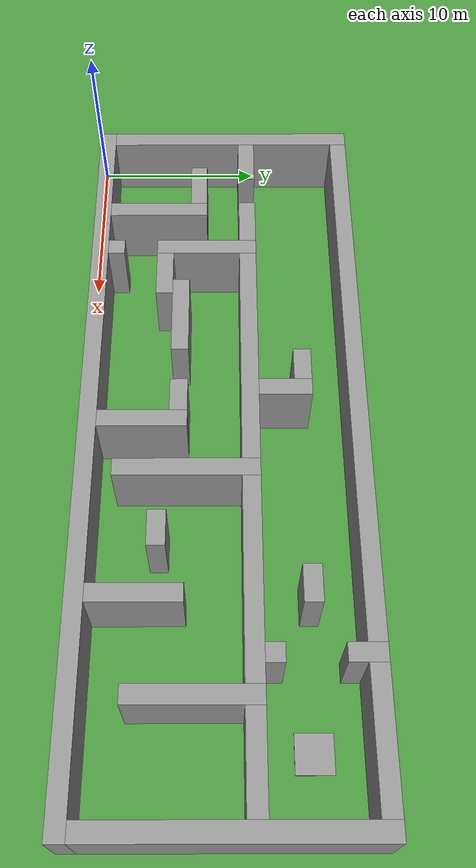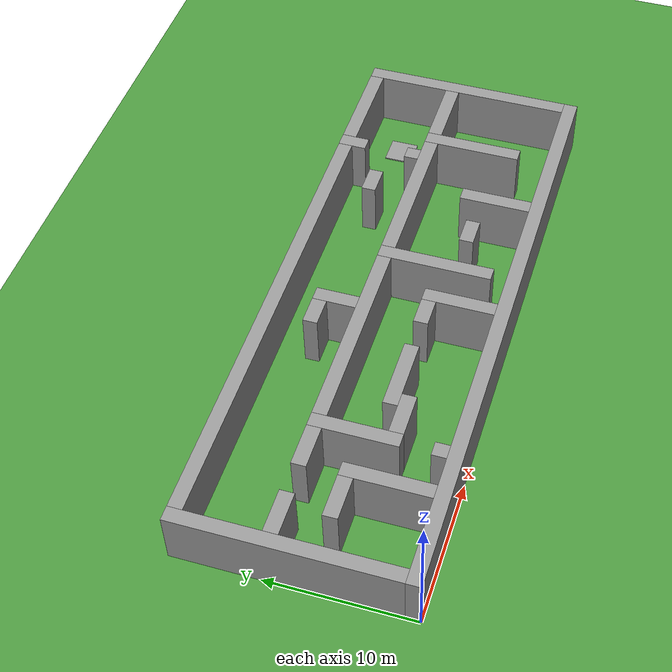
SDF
<sdf version="1.6">
 <world name="default">
  <light name="sun" type="directional">
   <pose>0 0 10 0 -0 0</pose>
   <diffuse>0.8 0.8 0.8 1</diffuse>
   <specular>0.1 0.1 0.1 1</specular>
   <attenuation>
    <range>1000</range>
    <constant>0.9</constant>
    <linear>0.01</linear>
    <quadratic>0.001</quadratic>
   </attenuation>
   <direction>-0.5 0.5 -1</direction>
  </light>
  <model name="ground_plane">
   <static>1</static>
   <link name="link">
    <collision name="collision">
     <geometry><plane><normal>0 0 1</normal><size>100 100</size></plane></geometry>
     <surface><friction><ode><mu>100</mu><mu2>50</mu2></ode></friction></surface>
    </collision>
    <visual name="visual">
     <cast_shadows>0</cast_shadows>
     <geometry><plane><normal>0 0 1</normal><size>100 100</size></plane></geometry>
     <material>
      <script><uri>file://media/materials/scripts/gazebo.material</uri><name>Gazebo/Grass</name></script>
     </material>
    </visual>
   </link>
  </model>
  <gravity>0 0 -9.8</gravity>
  <magnetic_field>6e-06 2.3e-05 -4.2e-05</magnetic_field>
  <atmosphere type="adiabatic"/>
  <physics name="default_physics" default="0" type="ode">
   <max_step_size>0.001</max_step_size>
   <real_time_factor>1</real_time_factor>
   <real_time_update_rate>1000</real_time_update_rate>
  </physics>
  <scene><ambient>0.4 0.4 0.4 1</ambient><background>0.7 0.7 0.7 1</background><shadows>1</shadows></scene>
  <spherical_coordinates>
   <surface_model>EARTH_WGS84</surface_model>
   <latitude_deg>0</latitude_deg>
   <longitude_deg>0</longitude_deg>
   <elevation>0</elevation>
   <heading_deg>0</heading_deg>
  </spherical_coordinates>
  <model name="wall">
   <pose>21.500000 0.500000 2 0 0 0</pose>
   <static>1</static>
   <link name="wall-link">
    <collision name="collision"><geometry><box><size>43 1 4</size></box></geometry></collision>
    <visual name="visual">
     <geometry><box><size>43 1 4</size></box></geometry>
     <material>
      <script><name>Gazebo/Grey</name><uri>file://media/materials/scripts/gazebo.material</uri></script>
     </material>
    </visual>
    <gravity>0</gravity>
   </link>
  </model>
  <model name="wall">
   <pose>0.500000 8.500000 2 0 0 0</pose>
   <static>1</static>
   <link name="wall-link">
    <collision name="collision"><geometry><box><size>1 15 4</size></box></geometry></collision>
    <visual name="visual">
     <geometry><box><size>1 15 4</size></box></geometry>
     <material>
      <script><name>Gazebo/Grey</name><uri>file://media/materials/scripts/gazebo.material</uri></script>
     </material>
    </visual>
    <gravity>0</gravity>
   </link>
  </model>
  <model name="wall">
   <pose>6.500000 4.000000 2 0 0 0</pose>
   <static>1</static>
   <link name="wall-link">
    <collision name="collision"><geometry><box><size>1 6 4</size></box></geometry></collision>
    <visual name="visual">
     <geometry><box><size>1 6 4</size></box></geometry>
     <material>
      <script><name>Gazebo/Grey</name><uri>file://media/materials/scripts/gazebo.material</uri></script>
     </material>
    </visual>
    <gravity>0</gravity>
   </link>
  </model>
  <model name="wall">
   <pose>9.500000 1.500000 2 0 0 0</pose>
   <static>1</static>
   <link name="wall-link">
    <collision name="collision"><geometry><box><size>1 1 4</size></box></geometry></collision>
    <visual name="visual">
     <geometry><box><size>1 1 4</size></box></geometry>
     <material>
      <script><name>Gazebo/Grey</name><uri>file://media/materials/scripts/gazebo.material</uri></script>
     </material>
    </visual>
    <gravity>0</gravity>
   </link>
  </model>
  <model name="wall">
   <pose>21.500000 3.500000 2 0 0 0</pose>
   <static>1</static>
   <link name="wall-link">
    <collision name="collision"><geometry><box><size>1 5 4</size></box></geometry></collision>
    <visual name="visual">
     <geometry><box><size>1 5 4</size></box></geometry>
     <material>
      <script><name>Gazebo/Grey</name><uri>file://media/materials/scripts/gazebo.material</uri></script>
     </material>
    </visual>
    <gravity>0</gravity>
   </link>
  </model>
  <model name="wall">
   <pose>31.500000 3.500000 2 0 0 0</pose>
   <static>1</static>
   <link name="wall-link">
    <collision name="collision"><geometry><box><size>1 5 4</size></box></geometry></collision>
    <visual name="visual">
     <geometry><box><size>1 5 4</size></box></geometry>
     <material>
      <script><name>Gazebo/Grey</name><uri>file://media/materials/scripts/gazebo.material</uri></script>
     </material>
    </visual>
    <gravity>0</gravity>
   </link>
  </model>
  <model name="wall">
   <pose>42.500000 8.500000 2 0 0 0</pose>
   <static>1</static>
   <link name="wall-link">
    <collision name="collision"><geometry><box><size>1 15 4</size></box></geometry></collision>
    <visual name="visual">
     <geometry><box><size>1 15 4</size></box></geometry>
     <material>
      <script><name>Gazebo/Grey</name><uri>file://media/materials/scripts/gazebo.material</uri></script>
     </material>
    </visual>
    <gravity>0</gravity>
   </link>
  </model>
  <model name="wall">
   <pose>24.500000 6.000000 2 0 0 0</pose>
   <static>1</static>
   <link name="wall-link">
    <collision name="collision"><geometry><box><size>1 8 4</size></box></geometry></collision>
    <visual name="visual">
     <geometry><box><size>1 8 4</size></box></geometry>
     <material>
      <script><name>Gazebo/Grey</name><uri>file://media/materials/scripts/gazebo.material</uri></script>
     </material>
    </visual>
    <gravity>0</gravity>
   </link>
  </model>
  <model name="wall">
   <pose>36.500000 6.500000 2 0 0 0</pose>
   <static>1</static>
   <link name="wall-link">
    <collision name="collision"><geometry><box><size>1 7 4</size></box></geometry></collision>
    <visual name="visual">
     <geometry><box><size>1 7 4</size></box></geometry>
     <material>
      <script><name>Gazebo/Grey</name><uri>file://media/materials/scripts/gazebo.material</uri></script>
     </material>
    </visual>
    <gravity>0</gravity>
   </link>
  </model>
  <model name="wall">
   <pose>9.500000 7.000000 2 0 0 0</pose>
   <static>1</static>
   <link name="wall-link">
    <collision name="collision"><geometry><box><size>1 6 4</size></box></geometry></collision>
    <visual name="visual">
     <geometry><box><size>1 6 4</size></box></geometry>
     <material>
      <script><name>Gazebo/Grey</name><uri>file://media/materials/scripts/gazebo.material</uri></script>
     </material>
    </visual>
    <gravity>0</gravity>
   </link>
  </model>
  <model name="wall">
   <pose>11.500000 4.500000 2 0 0 0</pose>
   <static>1</static>
   <link name="wall-link">
    <collision name="collision"><geometry><box><size>3 1 4</size></box></geometry></collision>
    <visual name="visual">
     <geometry><box><size>3 1 4</size></box></geometry>
     <material>
      <script><name>Gazebo/Grey</name><uri>file://media/materials/scripts/gazebo.material</uri></script>
     </material>
    </visual>
    <gravity>0</gravity>
   </link>
  </model>
  <model name="wall">
   <pose>28.000000 4.500000 2 0 0 0</pose>
   <static>1</static>
   <link name="wall-link">
    <collision name="collision"><geometry><box><size>2 1 4</size></box></geometry></collision>
    <visual name="visual">
     <geometry><box><size>2 1 4</size></box></geometry>
     <material>
      <script><name>Gazebo/Grey</name><uri>file://media/materials/scripts/gazebo.material</uri></script>
     </material>
    </visual>
    <gravity>0</gravity>
   </link>
  </model>
  <model name="wall">
   <pose>14.500000 5.500000 2 0 0 0</pose>
   <static>1</static>
   <link name="wall-link">
    <collision name="collision"><geometry><box><size>5 1 4</size></box></geometry></collision>
    <visual name="visual">
     <geometry><box><size>5 1 4</size></box></geometry>
     <material>
      <script><name>Gazebo/Grey</name><uri>file://media/materials/scripts/gazebo.material</uri></script>
     </material>
    </visual>
    <gravity>0</gravity>
   </link>
  </model>
  <model name="wall">
   <pose>20.000000 5.500000 2 0 0 0</pose>
   <static>1</static>
   <link name="wall-link">
    <collision name="collision"><geometry><box><size>2 1 4</size></box></geometry></collision>
    <visual name="visual">
     <geometry><box><size>2 1 4</size></box></geometry>
     <material>
      <script><name>Gazebo/Grey</name><uri>file://media/materials/scripts/gazebo.material</uri></script>
     </material>
    </visual>
    <gravity>0</gravity>
   </link>
  </model>
  <model name="wall">
   <pose>4.500000 6.500000 2 0 0 0</pose>
   <static>1</static>
   <link name="wall-link">
    <collision name="collision"><geometry><box><size>3 1 4</size></box></geometry></collision>
    <visual name="visual">
     <geometry><box><size>3 1 4</size></box></geometry>
     <material>
      <script><name>Gazebo/Grey</name><uri>file://media/materials/scripts/gazebo.material</uri></script>
     </material>
    </visual>
    <gravity>0</gravity>
   </link>
  </model>
  <model name="wall">
   <pose>2.500000 9.500000 2 0 0 0</pose>
   <static>1</static>
   <link name="wall-link">
    <collision name="collision"><geometry><box><size>3 1 4</size></box></geometry></collision>
    <visual name="visual">
     <geometry><box><size>3 1 4</size></box></geometry>
     <material>
      <script><name>Gazebo/Grey</name><uri>file://media/materials/scripts/gazebo.material</uri></script>
     </material>
    </visual>
    <gravity>0</gravity>
   </link>
  </model>
  <model name="wall">
   <pose>7.500000 9.500000 2 0 0 0</pose>
   <static>1</static>
   <link name="wall-link">
    <collision name="collision"><geometry><box><size>3 1 4</size></box></geometry></collision>
    <visual name="visual">
     <geometry><box><size>3 1 4</size></box></geometry>
     <material>
      <script><name>Gazebo/Grey</name><uri>file://media/materials/scripts/gazebo.material</uri></script>
     </material>
    </visual>
    <gravity>0</gravity>
   </link>
  </model>
  <model name="wall">
   <pose>17.000000 9.500000 2 0 0 0</pose>
   <static>1</static>
   <link name="wall-link">
    <collision name="collision"><geometry><box><size>14 1 4</size></box></geometry></collision>
    <visual name="visual">
     <geometry><box><size>14 1 4</size></box></geometry>
     <material>
      <script><name>Gazebo/Grey</name><uri>file://media/materials/scripts/gazebo.material</uri></script>
     </material>
    </visual>
    <gravity>0</gravity>
   </link>
  </model>
  <model name="wall">
   <pose>30.500000 9.500000 2 0 0 0</pose>
   <static>1</static>
   <link name="wall-link">
    <collision name="collision"><geometry><box><size>11 1 4</size></box></geometry></collision>
    <visual name="visual">
     <geometry><box><size>11 1 4</size></box></geometry>
     <material>
      <script><name>Gazebo/Grey</name><uri>file://media/materials/scripts/gazebo.material</uri></script>
     </material>
    </visual>
    <gravity>0</gravity>
   </link>
  </model>
  <model name="wall">
   <pose>39.500000 9.500000 2 0 0 0</pose>
   <static>1</static>
   <link name="wall-link">
    <collision name="collision"><geometry><box><size>5 1 4</size></box></geometry></collision>
    <visual name="visual">
     <geometry><box><size>5 1 4</size></box></geometry>
     <material>
      <script><name>Gazebo/Grey</name><uri>file://media/materials/scripts/gazebo.material</uri></script>
     </material>
    </visual>
    <gravity>0</gravity>
   </link>
  </model>
  <model name="wall">
   <pose>19.500000 11.500000 2 0 0 0</pose>
   <static>1</static>
   <link name="wall-link">
    <collision name="collision"><geometry><box><size>1 3 4</size></box></geometry></collision>
    <visual name="visual">
     <geometry><box><size>1 3 4</size></box></geometry>
     <material>
      <script><name>Gazebo/Grey</name><uri>file://media/materials/scripts/gazebo.material</uri></script>
     </material>
    </visual>
    <gravity>0</gravity>
   </link>
  </model>
  <model name="wall">
   <pose>34.500000 10.500000 2 0 0 0</pose>
   <static>1</static>
   <link name="wall-link">
    <collision name="collision"><geometry><box><size>1 1 4</size></box></geometry></collision>
    <visual name="visual">
     <geometry><box><size>1 1 4</size></box></geometry>
     <material>
      <script><name>Gazebo/Grey</name><uri>file://media/materials/scripts/gazebo.material</uri></script>
     </material>
    </visual>
    <gravity>0</gravity>
   </link>
  </model>
  <model name="wall">
   <pose>18.000000 12.500000 2 0 0 0</pose>
   <static>1</static>
   <link name="wall-link">
    <collision name="collision"><geometry><box><size>2 1 4</size></box></geometry></collision>
    <visual name="visual">
     <geometry><box><size>2 1 4</size></box></geometry>
     <material>
      <script><name>Gazebo/Grey</name><uri>file://media/materials/scripts/gazebo.material</uri></script>
     </material>
    </visual>
    <gravity>0</gravity>
   </link>
  </model>
  <model name="wall">
   <pose>31.000000 12.500000 2 0 0 0</pose>
   <static>1</static>
   <link name="wall-link">
    <collision name="collision"><geometry><box><size>2 1 4</size></box></geometry></collision>
    <visual name="visual">
     <geometry><box><size>2 1 4</size></box></geometry>
     <material>
      <script><name>Gazebo/Grey</name><uri>file://media/materials/scripts/gazebo.material</uri></script>
     </material>
    </visual>
    <gravity>0</gravity>
   </link>
  </model>
  <model name="wall">
   <pose>34.500000 15.000000 2 0 0 0</pose>
   <static>1</static>
   <link name="wall-link">
    <collision name="collision"><geometry><box><size>1 2 4</size></box></geometry></collision>
    <visual name="visual">
     <geometry><box><size>1 2 4</size></box></geometry>
     <material>
      <script><name>Gazebo/Grey</name><uri>file://media/materials/scripts/gazebo.material</uri></script>
     </material>
    </visual>
    <gravity>0</gravity>
   </link>
  </model>
  <model name="wall">
   <pose>17.500000 15.500000 2 0 0 0</pose>
   <static>1</static>
   <link name="wall-link">
    <collision name="collision"><geometry><box><size>33 1 4</size></box></geometry></collision>
    <visual name="visual">
     <geometry><box><size>33 1 4</size></box></geometry>
     <material>
      <script><name>Gazebo/Grey</name><uri>file://media/materials/scripts/gazebo.material</uri></script>
     </material>
    </visual>
    <gravity>0</gravity>
   </link>
  </model>
  <model name="wall">
   <pose>38.500000 15.500000 2 0 0 0</pose>
   <static>1</static>
   <link name="wall-link">
    <collision name="collision"><geometry><box><size>7 1 4</size></box></geometry></collision>
    <visual name="visual">
     <geometry><box><size>7 1 4</size></box></geometry>
     <material>
      <script><name>Gazebo/Grey</name><uri>file://media/materials/scripts/gazebo.material</uri></script>
     </material>
    </visual>
    <gravity>0</gravity>
   </link>
  </model>
  <model name="goal">
   <pose>38.5 12.5 0.05 0 -0 0</pose>
   <static>1</static>
   <link name="link">
    <collision name="collision"><geometry><box><size>2.0 2.0 0.1</size></box></geometry></collision>
    <visual name="visual">
     <geometry><box><size>2.0 2.0 0.1</size></box></geometry>
     <material>
      <script><name>Gazebo/Grey</name><uri>file://media/materials/scripts/gazebo.material</uri></script>
     </material>
    </visual>
   </link>
  </model>
 </world>
</sdf>
